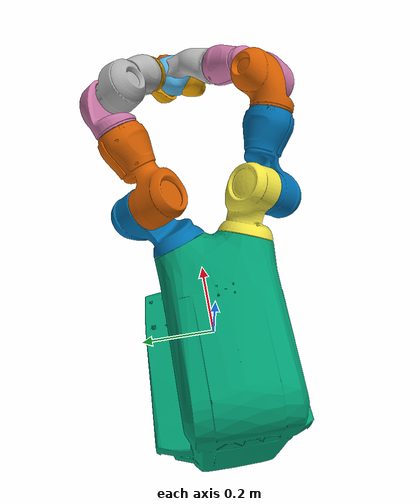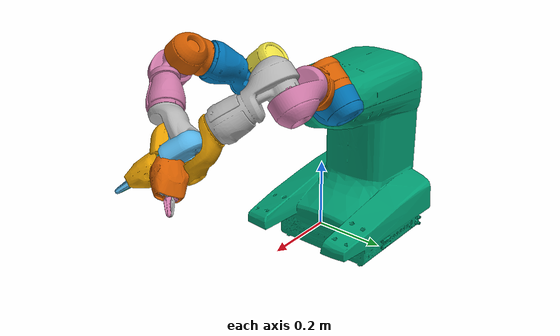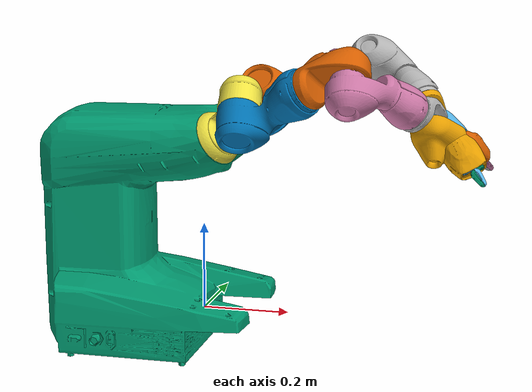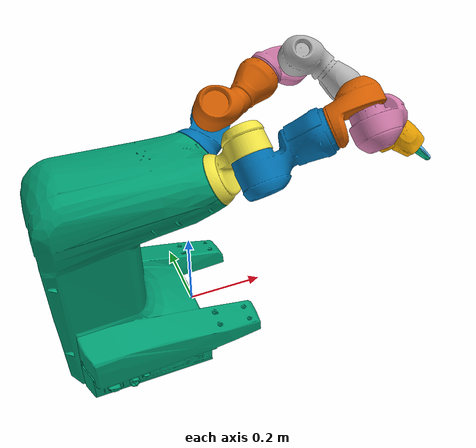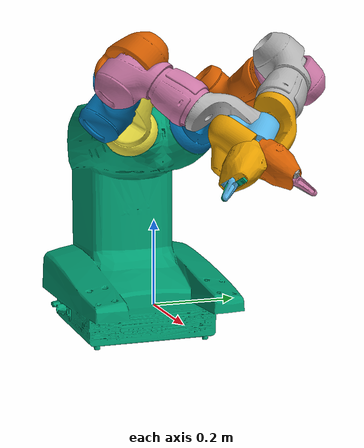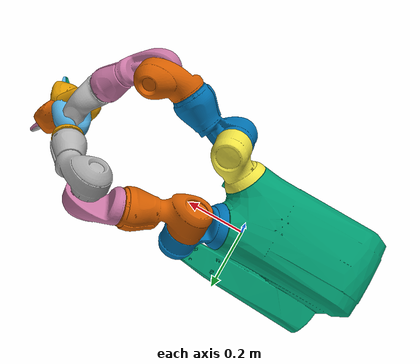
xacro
<?xml version="1.0"?>
<robot name="abb_irb14000" xmlns:xacro="http://ros.org/wiki/xacro">
  <xacro:arg name="use_fake_hardware" default="true" />
  <xacro:property name="use_fake_hardware" value="$(arg use_fake_hardware)" />
  <xacro:arg name="rws_ip" default="None" />
  <xacro:property name="rws_ip" value="$(arg rws_ip)" />
  <xacro:arg name="rws_port" default="80" />
  <xacro:property name="rws_port" value="$(arg rws_port)" />

  <!-- Robot description -->
  <xacro:include filename="$(find abb_irb14000_support)/urdf/irb14000_macro.xacro" />
  <xacro:irb14000 prefix="" />

  <!-- Right gripper -->
  <xacro:smart_gripper
    parent="robr_tool0"
    prefix="grpr_"
  >
    <origin xyz="0 0 0.007" rpy="0 0 ${radians(180)}" />
  </xacro:smart_gripper>

  <!-- Left gripper -->
  <xacro:smart_gripper
    parent="robl_tool0"
    prefix="grpl_"
  >
    <origin xyz="0 0 0.007" rpy="0 0 ${radians(180)}" />
  </xacro:smart_gripper>

  <!-- ros2_control -->
  <xacro:include filename="$(find abb_irb14000_support)/urdf/irb14000_ros2_control.xacro" />
  <xacro:irb14000_ros2_control
    name="ABBMultiInterfaceHardware"
    prefix=""
    use_fake_hardware="${use_fake_hardware}"
    rws_ip="${rws_ip}"
    rws_port="${rws_port}" />
</robot>

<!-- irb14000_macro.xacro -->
<robot name="irb14000" xmlns:xacro="http://www.ros.org/wiki/xacro">
  <xacro:include filename="$(find abb_resources)/urdf/common_materials.xacro" />
  <xacro:include filename="$(find abb_irb14000_support)/urdf/irb14000_arm_macro.xacro" />
  <xacro:include filename="$(find abb_irb14000_support)/urdf/smart_gripper_macro.xacro" />

  <xacro:macro name="irb14000" params="prefix">
    <!-- Base link -->
    <link name="${prefix}base_link" />
    <joint name="${prefix}base_joint" type="fixed">
      <parent link="${prefix}base_link" />
      <child link="${prefix}body" />
      <origin xyz="0 0 0" rpy="0 0 0" />
    </joint>

    <!-- ROS-Industrial 'base' frame - base_link to ABB World Coordinates transform -->
    <link name="${prefix}base" />
    <joint name="${prefix}base_link-base" type="fixed">
      <origin xyz="0 0 0" rpy="0 0 0" />
      <parent link="${prefix}base_link" />
      <child link="${prefix}base" />
    </joint>

    <!-- Body -->
    <link name="${prefix}body">
      <inertial>
        <origin xyz="0 0 0" rpy="0 0 0" />
        <mass value="15" />
        <inertia ixx="0.5" ixy="0" ixz="0" iyy="0.6" iyz="0" izz="0.3" />
      </inertial>
      <visual>
        <origin xyz="0 0 0" rpy="0 0 0" />
        <geometry>
          <mesh filename="package://abb_irb14000_support/meshes/irb14000/visual/body.stl" />
        </geometry>
        <xacro:material_abb_graphite_white />
      </visual>
      <collision>
        <origin xyz="0 0 0" rpy="0 0 0" />
        <geometry>
          <mesh filename="package://abb_irb14000_support/meshes/irb14000/collision/body.stl" />
        </geometry>
        <xacro:material_abb_yellow />
      </collision>
    </link>

    <!-- Right arm -->
    <xacro:irb14000_arm
      parent="${prefix}body"
      prefix="${prefix}robr_"
    >
      <origin xyz="0.05355 -0.07250 0.41492" rpy="-0.9795 -0.5682 -2.3155" />
    </xacro:irb14000_arm>

    <!-- Left arm -->
    <xacro:irb14000_arm
      parent="${prefix}body"
      prefix="${prefix}robl_"
    >
      <origin xyz="0.05355 0.07250 0.41492" rpy="0.9781 -0.5716 2.3180" />
    </xacro:irb14000_arm>

  </xacro:macro>

</robot>

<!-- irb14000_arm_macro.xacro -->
<robot name="irb14000_arm" xmlns:xacro="http://www.ros.org/wiki/xacro">
  <xacro:include filename="$(find abb_resources)/urdf/common_materials.xacro" />

  <xacro:macro name="irb14000_arm" params="parent prefix *origin">
    <!-- Links -->
    <link name="${prefix}link_1">
      <inertial>
        <origin xyz="0 -0.03 0.12" rpy="0 0 0" />
        <mass value="2" />
        <inertia ixx="0.1" ixy="0" ixz="0" iyy="0.1" iyz="0" izz="0.1" />
      </inertial>
      <visual>
        <origin xyz="0 0 0" rpy="0 0 0" />
        <geometry>
          <mesh filename="package://abb_irb14000_support/meshes/irb14000/visual/link_1.stl" />
        </geometry>
        <xacro:material_abb_dark_gray />
      </visual>
      <collision>
        <origin xyz="0 0 0" rpy="0 0 0" />
        <geometry>
          <mesh filename="package://abb_irb14000_support/meshes/irb14000/collision/link_1.stl" />
        </geometry>
        <xacro:material_abb_yellow />
      </collision>
    </link>
    <link name="${prefix}link_2">
      <inertial>
        <origin xyz="0 0 0" rpy="0 0 0" />
        <mass value="2" />
        <inertia ixx="0.1" ixy="0" ixz="0" iyy="0.1" iyz="0" izz="0.1" />
      </inertial>
      <visual>
        <origin xyz="0 0 0" rpy="0 0 0" />
        <geometry>
          <mesh filename="package://abb_irb14000_support/meshes/irb14000/visual/link_2.stl" />
        </geometry>
        <xacro:material_abb_dark_gray />
      </visual>
      <collision>
        <origin xyz="0 0 0" rpy="0 0 0" />
        <geometry>
          <mesh filename="package://abb_irb14000_support/meshes/irb14000/collision/link_2.stl" />
        </geometry>
        <xacro:material_abb_yellow />
      </collision>
    </link>
    <link name="${prefix}link_3">
      <inertial>
        <origin xyz="0 0 0" rpy="0 0 0" />
        <mass value="2" />
        <inertia ixx="0.1" ixy="0" ixz="0" iyy="0.1" iyz="0" izz="0.1" />
      </inertial>
      <visual>
        <origin xyz="0 0 0" rpy="0 0 0" />
        <geometry>
          <mesh filename="package://abb_irb14000_support/meshes/irb14000/visual/link_3.stl" />
        </geometry>
        <xacro:material_abb_dark_gray />
      </visual>
      <collision>
        <origin xyz="0 0 0" rpy="0 0 0" />
        <geometry>
          <mesh filename="package://abb_irb14000_support/meshes/irb14000/collision/link_3.stl" />
        </geometry>
        <xacro:material_abb_yellow />
      </collision>
    </link>
    <link name="${prefix}link_4">
      <inertial>
        <origin xyz="0 0 0" rpy="0 0 0" />
        <mass value="2" />
        <inertia ixx="0.1" ixy="0" ixz="0" iyy="0.1" iyz="0" izz="0.1" />
      </inertial>
      <visual>
        <origin xyz="0 0 0" rpy="0 0 0" />
        <geometry>
          <mesh filename="package://abb_irb14000_support/meshes/irb14000/visual/link_4.stl" />
        </geometry>
        <xacro:material_abb_dark_gray />
      </visual>
      <collision>
        <origin xyz="0 0 0" rpy="0 0 0" />
        <geometry>
          <mesh filename="package://abb_irb14000_support/meshes/irb14000/collision/link_4.stl" />
        </geometry>
        <xacro:material_abb_yellow />
      </collision>
    </link>
    <link name="${prefix}link_5">
      <inertial>
        <origin xyz="0 0 0" rpy="0 0 0" />
        <mass value="2" />
        <inertia ixx="0.1" ixy="0" ixz="0" iyy="0.1" iyz="0" izz="0.1" />
      </inertial>
      <visual>
        <origin xyz="0 0 0" rpy="0 0 0" />
        <geometry>
          <mesh filename="package://abb_irb14000_support/meshes/irb14000/visual/link_5.stl" />
        </geometry>
        <xacro:material_abb_dark_gray />
      </visual>
      <collision>
        <origin xyz="0 0 0" rpy="0 0 0" />
        <geometry>
          <mesh filename="package://abb_irb14000_support/meshes/irb14000/collision/link_5.stl" />
        </geometry>
        <xacro:material_abb_yellow />
      </collision>
    </link>
    <link name="${prefix}link_6">
      <inertial>
        <origin xyz="0 0 0" rpy="0 0 0" />
        <mass value="2" />
        <inertia ixx="0.1" ixy="0" ixz="0" iyy="0.1" iyz="0" izz="0.1" />
      </inertial>
      <visual>
        <origin xyz="0 0 0" rpy="0 0 0" />
        <geometry>
          <mesh filename="package://abb_irb14000_support/meshes/irb14000/visual/link_6.stl" />
        </geometry>
        <xacro:material_abb_dark_gray />
      </visual>
      <collision>
        <origin xyz="0 0 0" rpy="0 0 0" />
        <geometry>
          <mesh filename="package://abb_irb14000_support/meshes/irb14000/collision/link_6.stl" />
        </geometry>
        <xacro:material_abb_yellow />
      </collision>
    </link>
    <link name="${prefix}link_7">
      <inertial>
        <origin xyz="0 0 0" rpy="0 0 0" />
        <mass value="2" />
        <inertia ixx="0.1" ixy="0" ixz="0" iyy="0.1" iyz="0" izz="0.1" />
      </inertial>
      <visual>
        <origin xyz="0 0 0" rpy="0 0 0" />
        <geometry>
          <mesh filename="package://abb_irb14000_support/meshes/irb14000/visual/link_7.stl" />
        </geometry>
        <xacro:material_abb_dark_gray />
      </visual>
      <collision>
        <origin xyz="0 0 0" rpy="0 0 0" />
        <geometry>
          <mesh filename="package://abb_irb14000_support/meshes/irb14000/collision/link_7.stl" />
        </geometry>
        <xacro:material_abb_yellow />
      </collision>
    </link>

    <!-- Joints -->
    <joint name="${prefix}joint_1" type="revolute">
      <parent link="${parent}" />
      <child link="${prefix}link_1" />
      <xacro:insert_block name="origin" />
      <axis xyz="0 0 1" />
      <limit lower="${radians(-168.5)}" upper="${radians(168.5)}" effort="300" velocity="${radians(180)}" />
      <dynamics damping="0.5" />
    </joint>
    <joint name="${prefix}joint_2" type="revolute">
      <parent link="${prefix}link_1" />
      <child link="${prefix}link_2" />
      <origin xyz="0.03 0.0 0.1" rpy="${radians(90)} 0.0 0.0" />
      <axis xyz="0 0 1" />
      <limit lower="${radians(-143.5)}" upper="${radians(43.5)}" effort="300" velocity="${radians(180)}" />
      <dynamics damping="0.5" />
    </joint>
    <joint name="${prefix}joint_7" type="revolute">
      <parent link="${prefix}link_2" />
      <child link="${prefix}link_3" />
      <origin xyz="-0.03 0.17283 0.0" rpy="${radians(-90)} 0.0 0.0" />
      <axis xyz="0 0 1" />
      <limit lower="${radians(-168.5)}" upper="${radians(168.5)}" effort="300" velocity="${radians(180)}" />
      <dynamics damping="0.5" />
    </joint>
    <joint name="${prefix}joint_3" type="revolute">
      <parent link="${prefix}link_3" />
      <child link="${prefix}link_4" />
      <origin xyz="-0.04188 0.0 0.07873" rpy="${radians(90)} ${radians(-90)} 0.0" />
      <axis xyz="0 0 1" />
      <limit lower="${radians(-123.5)}" upper="${radians(80)}" effort="300" velocity="${radians(180)}" />
      <dynamics damping="0.5" />
    </joint>
    <joint name="${prefix}joint_4" type="revolute">
      <parent link="${prefix}link_4" />
      <child link="${prefix}link_5" />
      <origin xyz="0.0405 0.16461 0.0" rpy="-${radians(90)} 0.0 0.0" />
      <axis xyz="0 0 1" />
      <limit lower="${radians(-290)}" upper="${radians(290)}" effort="300" velocity="${radians(400)}" />
      <dynamics damping="0.5" />
    </joint>
    <joint name="${prefix}joint_5" type="revolute">
      <parent link="${prefix}link_5" />
      <child link="${prefix}link_6" />
      <origin xyz="-0.027 0 0.10039" rpy="${radians(90)} 0.0 0.0" />
      <axis xyz="0 0 1" />
      <limit lower="${radians(-88)}" upper="${radians(138)}" effort="300" velocity="${radians(400)}" />
      <dynamics damping="0.5" />
    </joint>
    <joint name="${prefix}joint_6" type="revolute">
      <parent link="${prefix}link_6" />
      <child link="${prefix}link_7" />
      <origin xyz="0.027 0.029 0.0" rpy="-${radians(90)} 0.0 0.0" />
      <axis xyz="0 0 1" />
      <limit lower="${radians(-229)}" upper="${radians(229)}" effort="300" velocity="${radians(400)}" />
      <dynamics damping="0.5" />
    </joint>

    <!-- ROS-Industrial 'flange' frame - attachment point for EEF models -->
    <link name="${prefix}flange" />
    <joint name="${prefix}link_7-flange" type="fixed">
      <parent link="${prefix}link_7" />
      <child link="${prefix}flange" />
      <origin xyz="0 0 0" rpy="0 0 0" />
    </joint>

    <!-- ROS-Industrial 'tool0' frame - all-zeros tool frame -->
    <link name="${prefix}tool0" />
    <joint name="${prefix}link_7-tool0" type="fixed">
      <parent link="${prefix}link_7" />
      <child link="${prefix}tool0" />
      <origin xyz="0 0 0" rpy="0 0 0" />
    </joint>
  </xacro:macro>
</robot>

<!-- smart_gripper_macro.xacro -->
<robot name="smart_gripper" xmlns:xacro="http://www.ros.org/wiki/xacro">
  <xacro:include filename="$(find abb_resources)/urdf/common_materials.xacro" />

  <xacro:macro name="smart_gripper" params="parent prefix *origin">
    <!-- Links -->
    <link name="${prefix}base">
      <inertial>
        <origin xyz="0 0 0" rpy="0 0 0" />
        <mass value="0.2" />
        <inertia ixx="0.0001" ixy="0" ixz="0" iyy="0.0001" iyz="0" izz="0.0001" />
      </inertial>
      <visual>
        <origin xyz="0 0 0" rpy="0 0 0" />
        <geometry>
          <mesh filename="package://abb_irb14000_support/meshes/smart_gripper/visual/base.stl" />
        </geometry>
        <xacro:material_abb_graphite_white />
      </visual>
      <collision>
        <origin xyz="0 0 0" rpy="0 0 0" />
        <geometry>
          <mesh filename="package://abb_irb14000_support/meshes/smart_gripper/collision/base.stl" />
        </geometry>
        <xacro:material_abb_yellow />
      </collision>
    </link>
    <link name="${prefix}finger_r">
      <inertial>
        <origin xyz="0 0 0" rpy="0 0 0" />
        <mass value="0.04" />
        <inertia ixx="0.000016" ixy="0" ixz="0" iyy="0.000016" iyz="0" izz="0.000016" />
      </inertial>
      <visual>
        <origin xyz="0 0 0" rpy="0 0 0" />
        <geometry>
          <mesh filename="package://abb_irb14000_support/meshes/smart_gripper/visual/finger.stl" />
        </geometry>
        <xacro:material_abb_graphite_white />
      </visual>
      <collision>
        <origin xyz="0 0 0" rpy="0 0 0" />
        <geometry>
          <mesh filename="package://abb_irb14000_support/meshes/smart_gripper/collision/finger.stl" />
        </geometry>
        <xacro:material_abb_yellow />
      </collision>
    </link>
    <link name="${prefix}finger_l">
      <inertial>
        <origin xyz="0 0 0" rpy="0 0 0" />
        <mass value="0.04" />
        <inertia ixx="0.000016" ixy="0" ixz="0" iyy="0.000016" iyz="0" izz="0.000016" />
      </inertial>
      <visual>
        <origin xyz="0 0 0" rpy="0 0 0" />
        <geometry>
          <mesh filename="package://abb_irb14000_support/meshes/smart_gripper/visual/finger.stl" />
        </geometry>
        <xacro:material_abb_graphite_white />
      </visual>
      <collision>
        <origin xyz="0 0 0" rpy="0 0 0" />
        <geometry>
          <mesh filename="package://abb_irb14000_support/meshes/smart_gripper/collision/finger.stl" />
        </geometry>
        <xacro:material_abb_yellow />
      </collision>
    </link>

    <!-- Joints -->
    <joint name="${parent}base_joint" type="fixed">
      <xacro:insert_block name="origin" />
      <parent link="${parent}" />
      <child link="${prefix}base" />
    </joint>
    <joint name="${prefix}half_aperture_joint" type="prismatic">
      <parent link="${prefix}base" />
      <child link="${prefix}finger_r" />
      <origin xyz="0 -0.0065 0.0837" rpy="0 0 0" />
      <axis xyz="-1 0 0" />
      <limit lower="0" upper="0.025" effort="20" velocity="2" />
      <dynamics damping="1.0" />
    </joint>
    <joint name="${prefix}half_aperture_joint_mimic" type="prismatic">
      <parent link="${prefix}base" />
      <child link="${prefix}finger_l" />
      <origin xyz="0 0.0065 0.0837" rpy="0 0 ${radians(180)}" />
      <axis xyz="-1 0 0" />
      <limit lower="0" upper="0.025" effort="20" velocity="2" />
      <dynamics damping="1.0" />
      <mimic joint="${prefix}half_aperture_joint" />
    </joint>
  </xacro:macro>
</robot>
